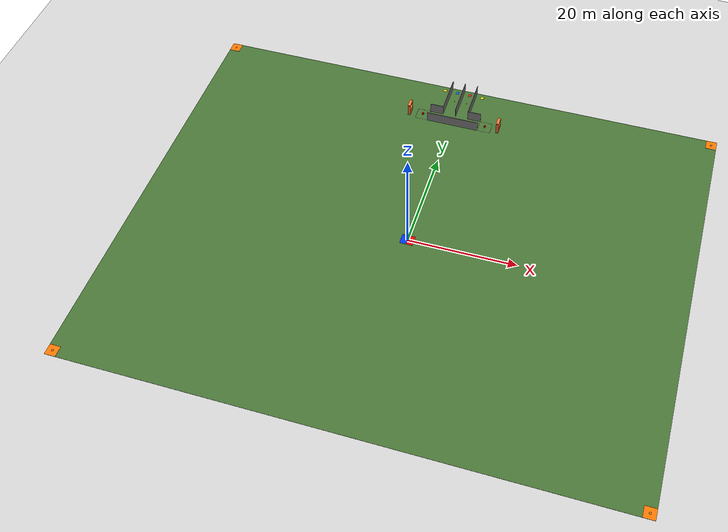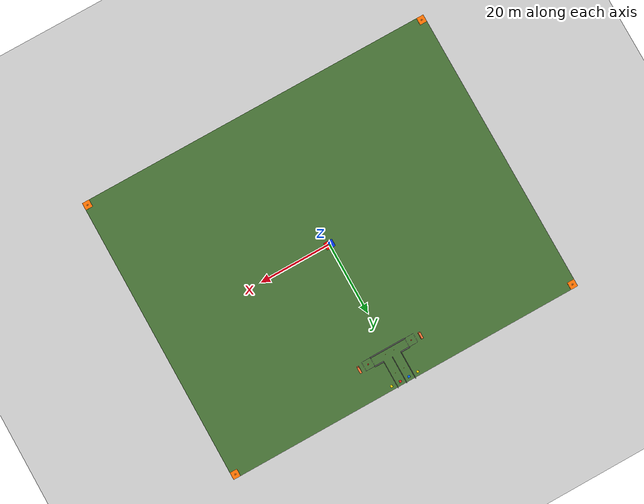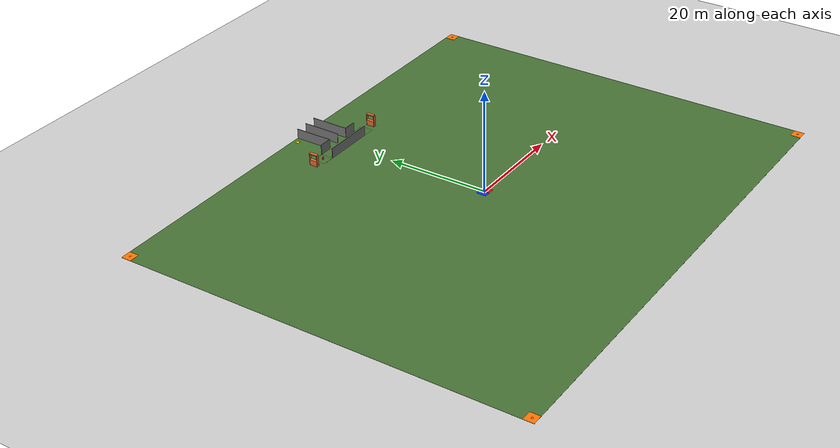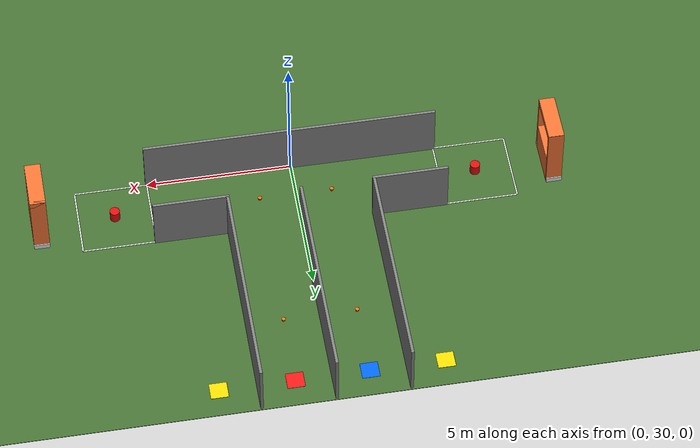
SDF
<?xml version="1.0" encoding="UTF-8"?>
<sdf version="1.9">
  <world name="walls">
    <physics type="ode">
      <max_step_size>0.004</max_step_size>
      <real_time_factor>1.0</real_time_factor>
      <real_time_update_rate>250</real_time_update_rate>
    </physics>
    <gravity>0 0 -9.8</gravity>
    <magnetic_field>6e-06 2.3e-05 -4.2e-05</magnetic_field>
    <atmosphere type="adiabatic"/>
    <scene>
      <grid>false</grid>
      <ambient>0.4 0.4 0.4 1</ambient>
      <background>0.7 0.7 0.7 1</background>
      <shadows>true</shadows>
    </scene>
    <model name="ground_plane">
      <static>true</static>
      <link name="link">
        <collision name="collision">
          <geometry>
            <plane>
              <normal>0 0 1</normal>
              <size>1 1</size>
            </plane>
          </geometry>
          <surface>
            <friction>
              <ode/>
            </friction>
            <bounce/>
            <contact/>
          </surface>
        </collision>
        <visual name="visual">
          <geometry>
            <plane>
              <normal>0 0 1</normal>
              <size>100 100</size>
            </plane>
          </geometry>
          <material>
            <ambient>0.8 0.8 0.8 1</ambient>
            <diffuse>0.8 0.8 0.8 1</diffuse>
            <specular>0.8 0.8 0.8 1</specular>
          </material>
        </visual>
        <pose>0 0 0 0 -0 0</pose>
        <inertial>
          <pose>0 0 0 0 -0 0</pose>
          <mass>1</mass>
          <inertia>
            <ixx>1</ixx>
            <ixy>0</ixy>
            <ixz>0</ixz>
            <iyy>1</iyy>
            <iyz>0</iyz>
            <izz>1</izz>
          </inertia>
        </inertial>
        <enable_wind>false</enable_wind>
      </link>
      <pose>0 0 0 0 -0 0</pose>
      <self_collide>false</self_collide>
    </model>
    <light name="sunUTC" type="directional">
      <pose>0 0 500 0 -0 0</pose>
      <cast_shadows>true</cast_shadows>
      <intensity>1</intensity>
      <direction>0.001 0.625 -0.78</direction>
      <diffuse>0.904 0.904 0.904 1</diffuse>
      <specular>0.271 0.271 0.271 1</specular>
      <attenuation>
        <range>2000</range>
        <linear>0</linear>
        <constant>1</constant>
        <quadratic>0</quadratic>
      </attenuation>
      <spot>
        <inner_angle>0</inner_angle>
        <outer_angle>0</outer_angle>
        <falloff>0</falloff>
      </spot>
    </light>
    <spherical_coordinates>
      <surface_model>EARTH_WGS84</surface_model>
      <world_frame_orientation>ENU</world_frame_orientation>
      <latitude_deg>-0.8977332822686178</latitude_deg>
      <longitude_deg>100.34701620539406</longitude_deg>
      <elevation>0</elevation>
    </spherical_coordinates>

    <model name="field_arena_assembly">
      <static>true</static>
      <pose>0 0 0 0 0 0</pose>

      <!-- Main field base -->
      <link name="main_field_link">
        <pose>0 0 0.01 0 0 0</pose>
        <collision name="col">
          <geometry>
            <box>
              <size>100 80 0.02</size>
            </box>
          </geometry>
        </collision>
        <visual name="vis">
          <geometry>
            <box>
              <size>100 80 0.02</size>
            </box>
          </geometry>
          <material>
            <ambient>0.24 0.40 0.18 1</ambient>
            <diffuse>0.27 0.44 0.20 1</diffuse>
            <specular>0.04 0.04 0.04 1</specular>
          </material>
        </visual>
      </link>

      <!-- DP Pads (corners) -->
      <link name="dp1_pad_link">
        <pose>-49 39 0.03 0 0 0</pose>
        <collision name="col">
          <geometry>
            <box>
              <size>2 2 0.01</size>
            </box>
          </geometry>
        </collision>
        <visual name="vis">
          <geometry>
            <box>
              <size>2 2 0.01</size>
            </box>
          </geometry>
          <material>
            <ambient>1 0.45 0 1</ambient>
            <diffuse>1 0.45 0 1</diffuse>
          </material>
        </visual>
      </link>

      <link name="dp2_pad_link">
        <pose>49 39 0.03 0 0 0</pose>
        <collision name="col">
          <geometry>
            <box>
              <size>2 2 0.01</size>
            </box>
          </geometry>
        </collision>
        <visual name="vis">
          <geometry>
            <box>
              <size>2 2 0.01</size>
            </box>
          </geometry>
          <material>
            <ambient>1 0.45 0 1</ambient>
            <diffuse>1 0.45 0 1</diffuse>
          </material>
        </visual>
      </link>

      <link name="dp3_pad_link">
        <pose>49 -39 0.03 0 0 0</pose>
        <collision name="col">
          <geometry>
            <box>
              <size>2 2 0.01</size>
            </box>
          </geometry>
        </collision>
        <visual name="vis">
          <geometry>
            <box>
              <size>2 2 0.01</size>
            </box>
          </geometry>
          <material>
            <ambient>1 0.45 0 1</ambient>
            <diffuse>1 0.45 0 1</diffuse>
          </material>
        </visual>
      </link>

      <link name="dp4_pad_link">
        <pose>-49 -39 0.03 0 0 0</pose>
        <collision name="col">
          <geometry>
            <box>
              <size>2 2 0.01</size>
            </box>
          </geometry>
        </collision>
        <visual name="vis">
          <geometry>
            <box>
              <size>2 2 0.01</size>
            </box>
          </geometry>
          <material>
            <ambient>1 0.45 0 1</ambient>
            <diffuse>1 0.45 0 1</diffuse>
          </material>
        </visual>
      </link>

      <!-- DP ring markers (diameter 40 cm) -->
      <link name="dp1_ring_link">
        <pose>-49 39 0.036 0 0 0</pose>
        <visual name="ring_outer">
          <geometry>
            <cylinder>
              <radius>0.20</radius>
              <length>0.002</length>
            </cylinder>
          </geometry>
          <material>
            <ambient>1 1 1 1</ambient>
            <diffuse>1 1 1 1</diffuse>
          </material>
        </visual>
        <visual name="ring_inner_cutout">
          <pose>0 0 0.0005 0 0 0</pose>
          <geometry>
            <cylinder>
              <radius>0.17</radius>
              <length>0.003</length>
            </cylinder>
          </geometry>
          <material>
            <ambient>1 0.45 0 1</ambient>
            <diffuse>1 0.45 0 1</diffuse>
          </material>
        </visual>
      </link>

      <link name="dp2_ring_link">
        <pose>49 39 0.036 0 0 0</pose>
        <visual name="ring_outer">
          <geometry>
            <cylinder>
              <radius>0.20</radius>
              <length>0.002</length>
            </cylinder>
          </geometry>
          <material>
            <ambient>1 1 1 1</ambient>
            <diffuse>1 1 1 1</diffuse>tambahin kode buat simpen video dari kamera
          </material>
        </visual>
        <visual name="ring_inner_cutout">
          <pose>0 0 0.0005 0 0 0</pose>
          <geometry>
            <cylinder>
              <radius>0.17</radius>
              <length>0.003</length>
            </cylinder>
          </geometry>
          <material>
            <ambient>1 0.45 0 1</ambient>
            <diffuse>1 0.45 0 1</diffuse>
          </material>
        </visual>
      </link>

      <link name="dp3_ring_link">
        <pose>49 -39 0.036 0 0 0</pose>
        <visual name="ring_outer">
          <geometry>
            <cylinder>
              <radius>0.20</radius>
              <length>0.002</length>
            </cylinder>
          </geometry>
          <material>
            <ambient>1 1 1 1</ambient>
            <diffuse>1 1 1 1</diffuse>
          </material>
        </visual>
        <visual name="ring_inner_cutout">
          <pose>0 0 0.0005 0 0 0</pose>
          <geometry>
            <cylinder>
              <radius>0.17</radius>
              <length>0.003</length>
            </cylinder>
          </geometry>
          <material>
            <ambient>1 0.45 0 1</ambient>
            <diffuse>1 0.45 0 1</diffuse>
          </material>
        </visual>
      </link>

      <link name="dp4_ring_link">
        <pose>-49 -39 0.036 0 0 0</pose>
        <visual name="ring_outer">
          <geometry>
            <cylinder>
              <radius>0.20</radius>
              <length>0.002</length>
            </cylinder>
          </geometry>
          <material>
            <ambient>1 1 1 1</ambient>
            <diffuse>1 1 1 1</diffuse>
          </material>
        </visual>
        <visual name="ring_inner_cutout">
          <pose>0 0 0.0005 0 0 0</pose>
          <geometry>
            <cylinder>
              <radius>0.17</radius>
              <length>0.003</length>
            </cylinder>
          </geometry>
          <material>
            <ambient>1 0.45 0 1</ambient>
            <diffuse>1 0.45 0 1</diffuse>
          </material>
        </visual>
      </link>

      <!-- Center pads -->
      <link name="dp9_pad_red_link">
        <pose>0.6 0 0.03 0 0 0</pose>
        <collision name="col">
          <geometry>
            <box>
              <size>1 1 0.01</size>
            </box>
          </geometry>
        </collision>
        <visual name="vis">
          <geometry>
            <box>
              <size>1.2 2 0.01</size>
            </box>
          </geometry>
          <material>
            <ambient>1 0 0 1</ambient>
            <diffuse>1 0 0 1</diffuse>
          </material>
        </visual>
      </link>

      <link name="dp9_pad_blue_link">
        <pose>-0.6 0 0.03 0 0 0</pose>
        <collision name="col">
          <geometry>
            <box>
              <size>1 1 0.01</size>
            </box>
          </geometry>
        </collision>
        <visual name="vis">
          <geometry>
            <box>
              <size>1.2 2 0.01</size>
            </box>
          </geometry>
          <material>
            <ambient>0 0.2 0.9 1</ambient>
            <diffuse>0 0.2 0.9 1</diffuse>
          </material>
        </visual>
      </link>

      <!-- Indoor start markers -->
      <link name="marker_indoor_start_L_link">
        <pose>-1.25 39 0.02 0 0 0</pose>
        <visual name="v">
          <geometry>
            <box>
              <size>0.60 0.60 0.01</size>
            </box>
          </geometry>
          <material>
            <ambient>0 0.4 1 1</ambient>
            <diffuse>0 0.4 1 1</diffuse>
          </material>
        </visual>
      </link>

      <link name="marker_indoor_start_R_link">
        <pose>1.25 39 0.02 0 0 0</pose>
        <visual name="v">
          <geometry>
            <box>
              <size>0.60 0.60 0.01</size>
            </box>
          </geometry>
          <material>
            <ambient>1 0.1 0.1 1</ambient>
            <diffuse>1 0.1 0.1 1</diffuse>
          </material>
        </visual>
      </link>

      <!-- Fixed Joints connecting all links to main field -->
      <joint name="dp1_pad_joint" type="fixed">
        <parent>main_field_link</parent>
        <child>dp1_pad_link</child>
      </joint>

      <joint name="dp2_pad_joint" type="fixed">
        <parent>main_field_link</parent>
        <child>dp2_pad_link</child>
      </joint>

      <joint name="dp3_pad_joint" type="fixed">
        <parent>main_field_link</parent>
        <child>dp3_pad_link</child>
      </joint>

      <joint name="dp4_pad_joint" type="fixed">
        <parent>main_field_link</parent>
        <child>dp4_pad_link</child>
      </joint>

      <joint name="dp1_ring_joint" type="fixed">
        <parent>main_field_link</parent>
        <child>dp1_ring_link</child>
      </joint>

      <joint name="dp2_ring_joint" type="fixed">
        <parent>main_field_link</parent>
        <child>dp2_ring_link</child>
      </joint>

      <joint name="dp3_ring_joint" type="fixed">
        <parent>main_field_link</parent>
        <child>dp3_ring_link</child>
      </joint>

      <joint name="dp4_ring_joint" type="fixed">
        <parent>main_field_link</parent>
        <child>dp4_ring_link</child>
      </joint>

      <joint name="dp9_pad_red_joint" type="fixed">
        <parent>main_field_link</parent>
        <child>dp9_pad_red_link</child>
      </joint>

      <joint name="dp9_pad_blue_joint" type="fixed">
        <parent>main_field_link</parent>
        <child>dp9_pad_blue_link</child>
      </joint>

      <joint name="marker_indoor_start_L_joint" type="fixed">
        <parent>main_field_link</parent>
        <child>marker_indoor_start_L_link</child>
      </joint>

      <joint name="marker_indoor_start_R_joint" type="fixed">
        <parent>main_field_link</parent>
        <child>marker_indoor_start_R_link</child>
      </joint>

      <!-- Outdoor markers -->
      <link name="marker_indoor_start_out_L_link">
        <pose>-3.80 39 0.02 0 0 0</pose>
        <visual name="v">
          <geometry>
            <box>
              <size>0.60 0.60 0.01</size>
            </box>
          </geometry>
          <material>
            <ambient>1 0.85 0 1</ambient>
            <diffuse>1 0.85 0 1</diffuse>
          </material>
        </visual>
      </link>

      <link name="marker_indoor_start_out_R_link">
        <pose>3.80 39 0.02 0 0 0</pose>
        <visual name="v">
          <geometry>
            <box>
              <size>0.60 0.60 0.01</size>
            </box>
          </geometry>
          <material>
            <ambient>1 0.85 0 1</ambient>
            <diffuse>1 0.85 0 1</diffuse>
          </material>
        </visual>
      </link>

      <!-- Indoor Arena Walls -->
      <link name="wall_top_back">
        <pose>0 30 1.0 0 0 3.141593</pose>
        <collision name="collision">
          <geometry>
            <box>
              <size>10.1 0.1 2.0</size>
            </box>
          </geometry>
        </collision>
        <visual name="visual">
          <geometry>
            <box>
              <size>10.1 0.1 2.0</size>
            </box>
          </geometry>
          <material>
            <ambient>0.5 0.5 0.5 1</ambient>
            <diffuse>0.5 0.5 0.5 1</diffuse>
          </material>
        </visual>
      </link>

      <link name="wall_inner_left">
        <pose>3.75 32.5 1.0 0 0 3.141593</pose>
        <collision name="collision">
          <geometry>
            <box>
              <size>2.6 0.1 2.0</size>
            </box>
          </geometry>
        </collision>
        <visual name="visual">
          <geometry>
            <box>
              <size>2.6 0.1 2.0</size>
            </box>
          </geometry>
          <material>
            <ambient>0.5 0.5 0.5 1</ambient>
            <diffuse>0.5 0.5 0.5 1</diffuse>
          </material>
        </visual>
      </link>

      <link name="wall_inner_right">
        <pose>-3.75 32.5 1.0 0 0 3.141593</pose>
        <collision name="collision">
          <geometry>
            <box>
              <size>2.6 0.1 2.0</size>
            </box>
          </geometry>
        </collision>
        <visual name="visual">
          <geometry>
            <box>
              <size>2.6 0.1 2.0</size>
            </box>
          </geometry>
          <material>
            <ambient>0.5 0.5 0.5 1</ambient>
            <diffuse>0.5 0.5 0.5 1</diffuse>
          </material>
        </visual>
      </link>

      <link name="wall_left_long">
        <pose>2.5 36.225 1.0 0 0 3.141593</pose>
        <collision name="collision">
          <geometry>
            <box>
              <size>0.1 7.45 2.0</size>
            </box>
          </geometry>
        </collision>
        <visual name="visual">
          <geometry>
            <box>
              <size>0.1 7.45 2.0</size>
            </box>
          </geometry>
          <material>
            <ambient>0.5 0.5 0.5 1</ambient>
            <diffuse>0.5 0.5 0.5 1</diffuse>
          </material>
        </visual>
      </link>

      <link name="wall_right_long">
        <pose>-2.5 36.225 1.0 0 0 3.141593</pose>
        <collision name="collision">
          <geometry>
            <box>
              <size>0.1 7.45 2.0</size>
            </box>
          </geometry>
        </collision>
        <visual name="visual">
          <geometry>
            <box>
              <size>0.1 7.45 2.0</size>
            </box>
          </geometry>
          <material>
            <ambient>0.5 0.5 0.5 1</ambient>
            <diffuse>0.5 0.5 0.5 1</diffuse>
          </material>
        </visual>
      </link>

      <link name="wall_center_divider">
        <pose>0 36.225 1.0 0 0 3.141593</pose>
        <collision name="collision">
          <geometry>
            <box>
              <size>0.1 7.45 2.0</size>
            </box>
          </geometry>
        </collision>
        <visual name="visual">
          <geometry>
            <box>
              <size>0.1 7.45 2.0</size>
            </box>
          </geometry>
          <material>
            <ambient>0.5 0.5 0.5 1</ambient>
            <diffuse>0.5 0.5 0.5 1</diffuse>
          </material>
        </visual>
      </link>

      <!-- Baskets (drop points) -->
      <link name="basket_left">
        <pose>6.25 31.25 0.20 0 0 0</pose>
        <collision name="collision_outer">
          <geometry>
            <cylinder>
              <radius>0.17</radius>
              <length>0.40</length>
            </cylinder>
          </geometry>
        </collision>
        <visual name="visual_outer">
          <geometry>
            <cylinder>
              <radius>0.17</radius>
              <length>0.40</length>
            </cylinder>
          </geometry>
          <material>
            <ambient>0.90 0.05 0.05 1</ambient>
            <diffuse>0.90 0.05 0.05 1</diffuse>
            <specular>0.1 0.1 0.1 1</specular>
          </material>
        </visual>
        <visual name="visual_inner">
          <pose>0 0 0.01 0 0 0</pose>
          <geometry>
            <cylinder>
              <radius>0.15</radius>
              <length>0.36</length>
            </cylinder>
          </geometry>
          <material>
            <ambient>0.70 0.03 0.03 1</ambient>
            <diffuse>0.70 0.03 0.03 1</diffuse>
            <specular>0.05 0.05 0.05 1</specular>
          </material>
        </visual>
      </link>

      <link name="basket_right">
        <pose>-6.25 31.25 0.20 0 0 0</pose>
        <collision name="collision_outer">
          <geometry>
            <cylinder>
              <radius>0.17</radius>
              <length>0.40</length>
            </cylinder>
          </geometry>
        </collision>
        <visual name="visual_outer">
          <geometry>
            <cylinder>
              <radius>0.17</radius>
              <length>0.40</length>
            </cylinder>
          </geometry>
          <material>
            <ambient>0.90 0.05 0.05 1</ambient>
            <diffuse>0.90 0.05 0.05 1</diffuse>
            <specular>0.1 0.1 0.1 1</specular>
          </material>
        </visual>
        <visual name="visual_inner">
          <pose>0 0 0.01 0 0 0</pose>
          <geometry>
            <cylinder>
              <radius>0.15</radius>
              <length>0.36</length>
            </cylinder>
          </geometry>
          <material>
            <ambient>0.70 0.03 0.03 1</ambient>
            <diffuse>0.70 0.03 0.03 1</diffuse>
            <specular>0.05 0.05 0.05 1</specular>
          </material>
        </visual>
      </link>

      <!-- Drop zone marker near IEG reference -->
      <link name="drop_zone_right_marker">
        <pose>6.25 31.25 0.021 0 0 0</pose>
        <visual name="edge_top">
          <pose>0 1.25 0 0 0 0</pose>
          <geometry>
            <box>
              <size>2.5 0.05 0.01</size>
            </box>
          </geometry>
          <material>
            <ambient>0.95 0.95 0.95 1</ambient>
            <diffuse>0.95 0.95 0.95 1</diffuse>
          </material>
        </visual>
        <visual name="edge_bottom">
          <pose>0 -1.25 0 0 0 0</pose>
          <geometry>
            <box>
              <size>2.5 0.05 0.01</size>
            </box>
          </geometry>
          <material>
            <ambient>0.95 0.95 0.95 1</ambient>
            <diffuse>0.95 0.95 0.95 1</diffuse>
          </material>
        </visual>
        <visual name="edge_left">
          <pose>1.25 0 0 0 0 0</pose>
          <geometry>
            <box>
              <size>0.05 2.5 0.01</size>
            </box>
          </geometry>
          <material>
            <ambient>0.95 0.95 0.95 1</ambient>
            <diffuse>0.95 0.95 0.95 1</diffuse>
          </material>
        </visual>
        <visual name="edge_right">
          <pose>-1.25 0 0 0 0 0</pose>
          <geometry>
            <box>
              <size>0.05 2.5 0.01</size>
            </box>
          </geometry>
          <material>
            <ambient>0.95 0.95 0.95 1</ambient>
            <diffuse>0.95 0.95 0.95 1</diffuse>
          </material>
        </visual>
      </link>

      <!-- Drop zone marker LEFT (mirror of right) -->
      <link name="drop_zone_left_marker">
        <pose>-6.25 31.25 0.021 0 0 0</pose>
        <visual name="edge_top">
          <pose>0 1.25 0 0 0 0</pose>
          <geometry>
            <box>
              <size>2.5 0.05 0.01</size>
            </box>
          </geometry>
          <material>
            <ambient>0.95 0.95 0.95 1</ambient>
            <diffuse>0.95 0.95 0.95 1</diffuse>
          </material>
        </visual>
        <visual name="edge_bottom">
          <pose>0 -1.25 0 0 0 0</pose>
          <geometry>
            <box>
              <size>2.5 0.05 0.01</size>
            </box>
          </geometry>
          <material>
            <ambient>0.95 0.95 0.95 1</ambient>
            <diffuse>0.95 0.95 0.95 1</diffuse>
          </material>
        </visual>
        <visual name="edge_left">
          <pose>1.25 0 0 0 0 0</pose>
          <geometry>
            <box>
              <size>0.05 2.5 0.01</size>
            </box>
          </geometry>
          <material>
            <ambient>0.95 0.95 0.95 1</ambient>
            <diffuse>0.95 0.95 0.95 1</diffuse>
          </material>
        </visual>
        <visual name="edge_right">
          <pose>-1.25 0 0 0 0 0</pose>
          <geometry>
            <box>
              <size>0.05 2.5 0.01</size>
            </box>
          </geometry>
          <material>
            <ambient>0.95 0.95 0.95 1</ambient>
            <diffuse>0.95 0.95 0.95 1</diffuse>
          </material>
        </visual>
      </link>

      <!-- Indoor Exit Gate (IEG) RIGHT: H 2.40 m, W 1.70 m, T 0.54 m, opening 1.50 x 1.10 m -->
      <link name="ieg_gate_right">
        <pose>8.85 31.25 1.20 0 0 1.5708</pose>
        <!-- Left post -->
        <collision name="collision_left_post">
          <pose>-0.80 0 0 0 0 0</pose>
          <geometry>
            <box>
              <size>0.10 0.54 2.40</size>
            </box>
          </geometry>
        </collision>
        <visual name="visual_left_post">
          <pose>-0.80 0 0 0 0 0</pose>
          <geometry>
            <box>
              <size>0.10 0.54 2.40</size>
            </box>
          </geometry>
          <material>
            <ambient>0.96 0.45 0.20 1</ambient>
            <diffuse>0.96 0.45 0.20 1</diffuse>
          </material>
        </visual>
        <!-- Right post -->
        <collision name="collision_right_post">
          <pose>0.80 0 0 0 0 0</pose>
          <geometry>
            <box>
              <size>0.10 0.54 2.40</size>
            </box>
          </geometry>
        </collision>
        <visual name="visual_right_post">
          <pose>0.80 0 0 0 0 0</pose>
          <geometry>
            <box>
              <size>0.10 0.54 2.40</size>
            </box>
          </geometry>
          <material>
            <ambient>0.96 0.45 0.20 1</ambient>
            <diffuse>0.96 0.45 0.20 1</diffuse>
          </material>
        </visual>
        <!-- Top beam -->
        <collision name="collision_top_beam">
          <pose>0 0 1.10 0 0 0</pose>
          <geometry>
            <box>
              <size>1.70 0.54 0.20</size>
            </box>
          </geometry>
        </collision>
        <visual name="visual_top_beam">
          <pose>0 0 1.10 0 0 0</pose>
          <geometry>
            <box>
              <size>1.70 0.54 0.20</size>
            </box>
          </geometry>
          <material>
            <ambient>0.96 0.45 0.20 1</ambient>
            <diffuse>0.96 0.45 0.20 1</diffuse>
          </material>
        </visual>
        <!-- Lower panel -->
        <collision name="collision_lower_panel">
          <pose>0 0 -0.65 0 0 0</pose>
          <geometry>
            <box>
              <size>1.50 0.54 1.10</size>
            </box>
          </geometry>
        </collision>
        <visual name="visual_lower_panel">
          <pose>0 0 -0.65 0 0 0</pose>
          <geometry>
            <box>
              <size>1.50 0.54 1.10</size>
            </box>
          </geometry>
          <material>
            <ambient>0.96 0.45 0.20 1</ambient>
            <diffuse>0.96 0.45 0.20 1</diffuse>
          </material>
        </visual>
        <!-- Left foot -->
        <collision name="collision_foot_left">
          <pose>-0.80 0 -1.10 0 0 0</pose>
          <geometry>
            <box>
              <size>0.18 0.54 0.20</size>
            </box>
          </geometry>
        </collision>
        <visual name="visual_foot_left">
          <pose>-0.80 0 -1.10 0 0 0</pose>
          <geometry>
            <box>
              <size>0.18 0.54 0.20</size>
            </box>
          </geometry>
          <material>
            <ambient>0.88 0.88 0.88 1</ambient>
            <diffuse>0.88 0.88 0.88 1</diffuse>
          </material>
        </visual>
        <!-- Right foot -->
        <collision name="collision_foot_right">
          <pose>0.80 0 -1.10 0 0 0</pose>
          <geometry>
            <box>
              <size>0.18 0.54 0.20</size>
            </box>
          </geometry>
        </collision>
        <visual name="visual_foot_right">
          <pose>0.80 0 -1.10 0 0 0</pose>
          <geometry>
            <box>
              <size>0.18 0.54 0.20</size>
            </box>
          </geometry>
          <material>
            <ambient>0.88 0.88 0.88 1</ambient>
            <diffuse>0.88 0.88 0.88 1</diffuse>
          </material>
        </visual>
      </link>

      <!-- Payloads in corridor -->
      <link name="payload_1">
        <pose>1.25 31.25 0.05 0 0 0</pose>
        <collision name="collision_body">
          <geometry>
            <cylinder>
              <radius>0.055</radius>
              <length>0.09</length>
            </cylinder>
          </geometry>
        </collision>
        <visual name="visual_body">
          <pose>0 0 -0.005 0 0 0</pose>
          <geometry>
            <cylinder>
              <radius>0.055</radius>
              <length>0.09</length>
            </cylinder>
          </geometry>
          <material>
            <ambient>0.95 0.45 0.05 1</ambient>
            <diffuse>0.95 0.45 0.05 1</diffuse>
            <specular>0.2 0.2 0.2 1</specular>
          </material>
        </visual>
        <visual name="visual_top_lip">
          <pose>0 0 0.045 0 0 0</pose>
          <geometry>
            <cylinder>
              <radius>0.07</radius>
              <length>0.01</length>
            </cylinder>
          </geometry>
          <material>
            <ambient>0.95 0.45 0.05 1</ambient>
            <diffuse>0.95 0.45 0.05 1</diffuse>
            <specular>0.2 0.2 0.2 1</specular>
          </material>
        </visual>
      </link>

      <link name="payload_2">
        <pose>-1.25 31.25 0.05 0 0 0</pose>
        <collision name="collision_body">
          <geometry>
            <cylinder>
              <radius>0.055</radius>
              <length>0.09</length>
            </cylinder>
          </geometry>
        </collision>
        <visual name="visual_body">
          <pose>0 0 -0.005 0 0 0</pose>
          <geometry>
            <cylinder>
              <radius>0.055</radius>
              <length>0.09</length>
            </cylinder>
          </geometry>
          <material>
            <ambient>0.95 0.45 0.05 1</ambient>
            <diffuse>0.95 0.45 0.05 1</diffuse>
            <specular>0.2 0.2 0.2 1</specular>
          </material>
        </visual>
        <visual name="visual_top_lip">
          <pose>0 0 0.045 0 0 0</pose>
          <geometry>
            <cylinder>
              <radius>0.07</radius>
              <length>0.01</length>
            </cylinder>
          </geometry>
          <material>
            <ambient>0.95 0.45 0.05 1</ambient>
            <diffuse>0.95 0.45 0.05 1</diffuse>
            <specular>0.2 0.2 0.2 1</specular>
          </material>
        </visual>
      </link>

      <link name="payload_3">
        <pose>1.25 36.5 0.05 0 0 0</pose>
        <collision name="collision_body">
          <geometry>
            <cylinder>
              <radius>0.055</radius>
              <length>0.09</length>
            </cylinder>
          </geometry>
        </collision>
        <visual name="visual_body">
          <pose>0 0 -0.005 0 0 0</pose>
          <geometry>
            <cylinder>
              <radius>0.055</radius>
              <length>0.09</length>
            </cylinder>
          </geometry>
          <material>
            <ambient>0.95 0.45 0.05 1</ambient>
            <diffuse>0.95 0.45 0.05 1</diffuse>
            <specular>0.2 0.2 0.2 1</specular>
          </material>
        </visual>
        <visual name="visual_top_lip">
          <pose>0 0 0.045 0 0 0</pose>
          <geometry>
            <cylinder>
              <radius>0.07</radius>
              <length>0.01</length>
            </cylinder>
          </geometry>
          <material>
            <ambient>0.95 0.45 0.05 1</ambient>
            <diffuse>0.95 0.45 0.05 1</diffuse>
            <specular>0.2 0.2 0.2 1</specular>
          </material>
        </visual>
      </link>

      <link name="payload_4">
        <pose>-1.25 36.50 0.05 0 0 0</pose>
        <collision name="collision_body">
          <geometry>
            <cylinder>
              <radius>0.055</radius>
              <length>0.09</length>
            </cylinder>
          </geometry>
        </collision>
        <visual name="visual_body">
          <pose>0 0 -0.005 0 0 0</pose>
          <geometry>
            <cylinder>
              <radius>0.055</radius>
              <length>0.09</length>
            </cylinder>
          </geometry>
          <material>
            <ambient>0.95 0.45 0.05 1</ambient>
            <diffuse>0.95 0.45 0.05 1</diffuse>
            <specular>0.2 0.2 0.2 1</specular>
          </material>
        </visual>
        <visual name="visual_top_lip">
          <pose>0 0 0.045 0 0 0</pose>
          <geometry>
            <cylinder>
              <radius>0.07</radius>
              <length>0.01</length>
            </cylinder>
          </geometry>
          <material>
            <ambient>0.95 0.45 0.05 1</ambient>
            <diffuse>0.95 0.45 0.05 1</diffuse>
            <specular>0.2 0.2 0.2 1</specular>
          </material>
        </visual>
      </link>

      <!-- Indoor Exit Gate (IEG) LEFT: mirror of right gate -->
      <link name="ieg_gate_left">
        <pose>-8.85 31.25 1.20 0 0 1.5708</pose>
        <!-- Left post -->
        <collision name="collision_left_post">
          <pose>-0.80 0 0 0 0 0</pose>
          <geometry>
            <box>
              <size>0.10 0.54 2.40</size>
            </box>
          </geometry>
        </collision>
        <visual name="visual_left_post">
          <pose>-0.80 0 0 0 0 0</pose>
          <geometry>
            <box>
              <size>0.10 0.54 2.40</size>
            </box>
          </geometry>
          <material>
            <ambient>0.96 0.45 0.20 1</ambient>
            <diffuse>0.96 0.45 0.20 1</diffuse>
          </material>
        </visual>
        <!-- Right post -->
        <collision name="collision_right_post">
          <pose>0.80 0 0 0 0 0</pose>
          <geometry>
            <box>
              <size>0.10 0.54 2.40</size>
            </box>
          </geometry>
        </collision>
        <visual name="visual_right_post">
          <pose>0.80 0 0 0 0 0</pose>
          <geometry>
            <box>
              <size>0.10 0.54 2.40</size>
            </box>
          </geometry>
          <material>
            <ambient>0.96 0.45 0.20 1</ambient>
            <diffuse>0.96 0.45 0.20 1</diffuse>
          </material>
        </visual>
        <!-- Top beam -->
        <collision name="collision_top_beam">
          <pose>0 0 1.10 0 0 0</pose>
          <geometry>
            <box>
              <size>1.70 0.54 0.20</size>
            </box>
          </geometry>
        </collision>
        <visual name="visual_top_beam">
          <pose>0 0 1.10 0 0 0</pose>
          <geometry>
            <box>
              <size>1.70 0.54 0.20</size>
            </box>
          </geometry>
          <material>
            <ambient>0.96 0.45 0.20 1</ambient>
            <diffuse>0.96 0.45 0.20 1</diffuse>
          </material>
        </visual>
        <!-- Lower panel -->
        <collision name="collision_lower_panel">
          <pose>0 0 -0.65 0 0 0</pose>
          <geometry>
            <box>
              <size>1.50 0.54 1.10</size>
            </box>
          </geometry>
        </collision>
        <visual name="visual_lower_panel">
          <pose>0 0 -0.65 0 0 0</pose>
          <geometry>
            <box>
              <size>1.50 0.54 1.10</size>
            </box>
          </geometry>
          <material>
            <ambient>0.96 0.45 0.20 1</ambient>
            <diffuse>0.96 0.45 0.20 1</diffuse>
          </material>
        </visual>
        <!-- Left foot -->
        <collision name="collision_foot_left">
          <pose>-0.80 0 -1.10 0 0 0</pose>
          <geometry>
            <box>
              <size>0.18 0.54 0.20</size>
            </box>
          </geometry>
        </collision>
        <visual name="visual_foot_left">
          <pose>-0.80 0 -1.10 0 0 0</pose>
          <geometry>
            <box>
              <size>0.18 0.54 0.20</size>
            </box>
          </geometry>
          <material>
            <ambient>0.88 0.88 0.88 1</ambient>
            <diffuse>0.88 0.88 0.88 1</diffuse>
          </material>
        </visual>
        <!-- Right foot -->
        <collision name="collision_foot_right">
          <pose>0.80 0 -1.10 0 0 0</pose>
          <geometry>
            <box>
              <size>0.18 0.54 0.20</size>
            </box>
          </geometry>
        </collision>
        <visual name="visual_foot_right">
          <pose>0.80 0 -1.10 0 0 0</pose>
          <geometry>
            <box>
              <size>0.18 0.54 0.20</size>
            </box>
          </geometry>
          <material>
            <ambient>0.88 0.88 0.88 1</ambient>
            <diffuse>0.88 0.88 0.88 1</diffuse>
          </material>
        </visual>
      </link>

      <joint name="marker_indoor_start_out_L_joint" type="fixed">
        <parent>main_field_link</parent>
        <child>marker_indoor_start_out_L_link</child>
      </joint>

      <joint name="marker_indoor_start_out_R_joint" type="fixed">
        <parent>main_field_link</parent>
        <child>marker_indoor_start_out_R_link</child>
      </joint>

      <joint name="wall_top_back_joint" type="fixed">
        <parent>main_field_link</parent>
        <child>wall_top_back</child>
      </joint>

      <joint name="wall_inner_left_joint" type="fixed">
        <parent>main_field_link</parent>
        <child>wall_inner_left</child>
      </joint>

      <joint name="wall_inner_right_joint" type="fixed">
        <parent>main_field_link</parent>
        <child>wall_inner_right</child>
      </joint>

      <joint name="wall_left_long_joint" type="fixed">
        <parent>main_field_link</parent>
        <child>wall_left_long</child>
      </joint>

      <joint name="wall_right_long_joint" type="fixed">
        <parent>main_field_link</parent>
        <child>wall_right_long</child>
      </joint>

      <joint name="wall_center_divider_joint" type="fixed">
        <parent>main_field_link</parent>
        <child>wall_center_divider</child>
      </joint>

      <joint name="basket_left_joint" type="fixed">
        <parent>main_field_link</parent>
        <child>basket_left</child>
      </joint>

      <joint name="basket_right_joint" type="fixed">
        <parent>main_field_link</parent>
        <child>basket_right</child>
      </joint>

      <joint name="drop_zone_right_marker_joint" type="fixed">
        <parent>main_field_link</parent>
        <child>drop_zone_right_marker</child>
      </joint>

      <joint name="drop_zone_left_marker_joint" type="fixed">
        <parent>main_field_link</parent>
        <child>drop_zone_left_marker</child>
      </joint>

      <joint name="ieg_gate_right_joint" type="fixed">
        <parent>main_field_link</parent>
        <child>ieg_gate_right</child>
      </joint>

      <joint name="ieg_gate_left_joint" type="fixed">
        <parent>main_field_link</parent>
        <child>ieg_gate_left</child>
      </joint>

      <joint name="payload_1_joint" type="fixed">
        <parent>main_field_link</parent>
        <child>payload_1</child>
      </joint>

      <joint name="payload_2_joint" type="fixed">
        <parent>main_field_link</parent>
        <child>payload_2</child>
      </joint>

      <joint name="payload_3_joint" type="fixed">
        <parent>main_field_link</parent>
        <child>payload_3</child>
      </joint>

      <joint name="payload_4_joint" type="fixed">
        <parent>main_field_link</parent>
        <child>payload_4</child>
      </joint>
    </model>

  </world>
</sdf>
